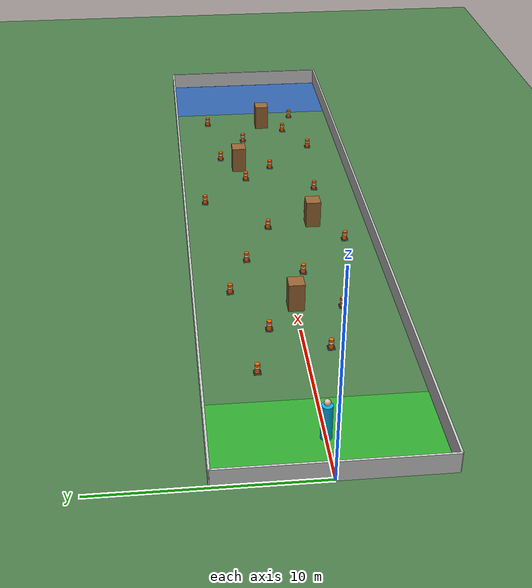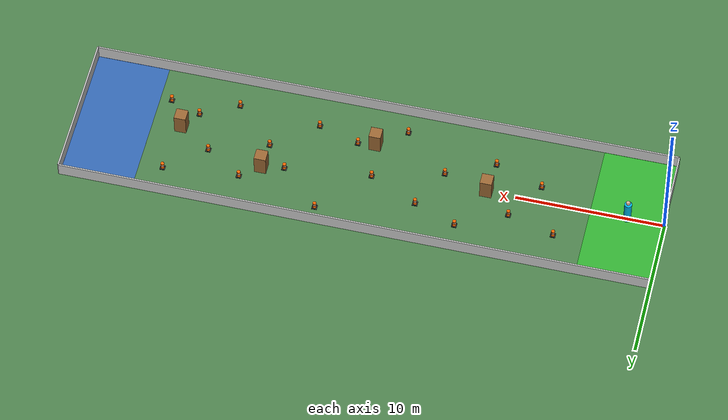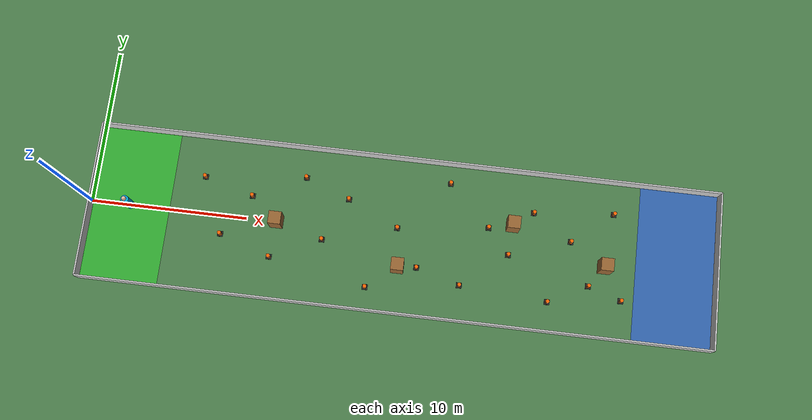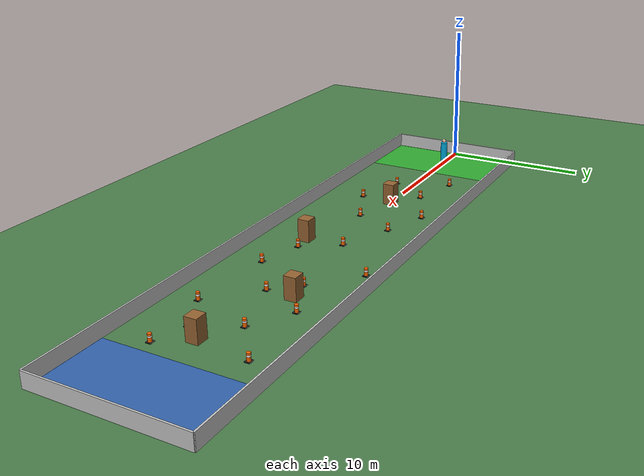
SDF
<?xml version="1.0" ?>
<sdf version="1.6">
  <world name="stage1_field">
    <!-- Physics engine -->
    <physics name="1ms" type="ignored">
      <max_step_size>0.001</max_step_size>
      <real_time_factor>1.0</real_time_factor>
      <real_time_update_rate>1000</real_time_update_rate>
    </physics>

    <!-- Plugins -->
    <plugin filename="gz-sim-physics-system" name="gz::sim::systems::Physics"/>
    <plugin filename="gz-sim-user-commands-system" name="gz::sim::systems::UserCommands"/>
    <plugin filename="gz-sim-scene-broadcaster-system" name="gz::sim::systems::SceneBroadcaster"/>
    <plugin filename="gz-sim-sensors-system" name="gz::sim::systems::Sensors">
      <render_engine>ogre2</render_engine>
    </plugin>

    <!-- Sun Light -->
    <light type="directional" name="sun">
      <cast_shadows>true</cast_shadows>
      <pose>0 0 10 0 0 0</pose>
      <diffuse>0.8 0.8 0.8 1</diffuse>
      <specular>0.2 0.2 0.2 1</specular>
      <direction>-0.5 0.1 -0.9</direction>
    </light>

    <!-- Ground Plane -->
    <model name="ground_plane">
      <static>true</static>
      <link name="link">
        <collision name="collision">
          <geometry>
            <plane>
              <normal>0 0 1</normal>
              <size>100 100</size>
            </plane>
          </geometry>
        </collision>
        <visual name="visual">
          <geometry>
            <plane>
              <normal>0 0 1</normal>
              <size>100 100</size>
            </plane>
          </geometry>
          <material>
            <ambient>0.3 0.4 0.3 1.0</ambient>
            <diffuse>0.3 0.5 0.3 1.0</diffuse>
          </material>
        </visual>
      </link>
    </model>

    <!-- Field Enclosure Walls (10m x 40m Field: X=[0,40], Y=[-5,5]) -->
    <model name="wall_north">
      <static>true</static>
      <pose>20.0 5.0 0.5 0 0 0</pose>
      <link name="link">
        <visual name="visual"><geometry><box><size>40.0 0.1 1.0</size></box></geometry><material><ambient>0.8 0.8 0.8 1.0</ambient></material></visual>
        <collision name="collision"><geometry><box><size>40.0 0.1 1.0</size></box></geometry></collision>
      </link>
    </model>

    <model name="wall_south">
      <static>true</static>
      <pose>20.0 -5.0 0.5 0 0 0</pose>
      <link name="link">
        <visual name="visual"><geometry><box><size>40.0 0.1 1.0</size></box></geometry><material><ambient>0.8 0.8 0.8 1.0</ambient></material></visual>
        <collision name="collision"><geometry><box><size>40.0 0.1 1.0</size></box></geometry></collision>
      </link>
    </model>

    <model name="wall_west">
      <static>true</static>
      <pose>0.0 0.0 0.5 0 0 0</pose>
      <link name="link">
        <visual name="visual"><geometry><box><size>0.1 10.0 1.0</size></box></geometry><material><ambient>0.8 0.8 0.8 1.0</ambient></material></visual>
        <collision name="collision"><geometry><box><size>0.1 10.0 1.0</size></box></geometry></collision>
      </link>
    </model>

    <model name="wall_east">
      <static>true</static>
      <pose>40.0 0.0 0.5 0 0 0</pose>
      <link name="link">
        <visual name="visual"><geometry><box><size>0.1 10.0 1.0</size></box></geometry><material><ambient>0.8 0.8 0.8 1.0</ambient></material></visual>
        <collision name="collision"><geometry><box><size>0.1 10.0 1.0</size></box></geometry></collision>
      </link>
    </model>

    <!-- Start Zone Mat (X=[0, 5], Y=[-5, 5]) -->
    <model name="start_zone_mat">
      <static>true</static>
      <pose>2.5 0.0 0.005 0 0 0</pose>
      <link name="link">
        <visual name="visual">
          <geometry><box><size>5.0 10.0 0.001</size></box></geometry>
          <material><ambient>0.1 0.6 0.1 0.7</ambient><diffuse>0.2 0.8 0.2 0.7</diffuse></material>
        </visual>
      </link>
    </model>

    <!-- Exit Zone Mat (X=[35, 40], Y=[-5, 5]) -->
    <model name="exit_zone_mat">
      <static>true</static>
      <pose>37.5 0.0 0.005 0 0 0</pose>
      <link name="link">
        <visual name="visual">
          <geometry><box><size>5.0 10.0 0.001</size></box></geometry>
          <material><ambient>0.1 0.3 0.8 0.7</ambient><diffuse>0.2 0.4 0.9 0.7</diffuse></material>
        </visual>
      </link>
    </model>

    <!-- Static Human Model -->
    <include>
      <uri>model://static_human</uri>
      <name>human_0</name>
      <pose>2.5 0.0 0.0 0 0 0.0</pose>
    </include>

    <!-- Static Obstacles -->
    <include><uri>model://static_obstacle</uri><name>obstacle_1</name><pose>12.0 0.0 0.0 0 0 0</pose></include>
    <include><uri>model://static_obstacle</uri><name>obstacle_2</name><pose>20.0 -2.0 0.0 0 0 0</pose></include>
    <include><uri>model://static_obstacle</uri><name>obstacle_3</name><pose>27.0 1.5 0.0 0 0 0</pose></include>
    <include><uri>model://static_obstacle</uri><name>obstacle_4</name><pose>33.0 -0.5 0.0 0 0 0</pose></include>

    <!-- Simulated Mines (Traffic Cones) -->
    <include><uri>model://traffic_cone</uri><name>mine_1</name><pose>10.2 1.5 0.0 0 0 0</pose></include>
    <include><uri>model://traffic_cone</uri><name>mine_2</name><pose>11.8 -2.3 0.0 0 0 0</pose></include>
    <include><uri>model://traffic_cone</uri><name>mine_3</name><pose>13.5 3.1 0.0 0 0 0</pose></include>
    <include><uri>model://traffic_cone</uri><name>mine_4</name><pose>15.0 -0.8 0.0 0 0 0</pose></include>
    <include><uri>model://traffic_cone</uri><name>mine_5</name><pose>16.4 2.0 0.0 0 0 0</pose></include>
    <include><uri>model://traffic_cone</uri><name>mine_6</name><pose>18.1 -3.5 0.0 0 0 0</pose></include>
    <include><uri>model://traffic_cone</uri><name>mine_7</name><pose>19.7 0.5 0.0 0 0 0</pose></include>
    <include><uri>model://traffic_cone</uri><name>mine_8</name><pose>21.2 -1.9 0.0 0 0 0</pose></include>
    <include><uri>model://traffic_cone</uri><name>mine_9</name><pose>22.8 3.8 0.0 0 0 0</pose></include>
    <include><uri>model://traffic_cone</uri><name>mine_10</name><pose>24.0 -2.7 0.0 0 0 0</pose></include>
    <include><uri>model://traffic_cone</uri><name>mine_11</name><pose>25.5 1.2 0.0 0 0 0</pose></include>
    <include><uri>model://traffic_cone</uri><name>mine_12</name><pose>26.9 -0.4 0.0 0 0 0</pose></include>
    <include><uri>model://traffic_cone</uri><name>mine_13</name><pose>28.3 2.5 0.0 0 0 0</pose></include>
    <include><uri>model://traffic_cone</uri><name>mine_14</name><pose>29.6 -3.1 0.0 0 0 0</pose></include>
    <include><uri>model://traffic_cone</uri><name>mine_15</name><pose>30.8 0.9 0.0 0 0 0</pose></include>
    <include><uri>model://traffic_cone</uri><name>mine_16</name><pose>32.1 -1.8 0.0 0 0 0</pose></include>
    <include><uri>model://traffic_cone</uri><name>mine_17</name><pose>33.4 3.0 0.0 0 0 0</pose></include>
    <include><uri>model://traffic_cone</uri><name>mine_18</name><pose>34.2 -2.5 0.0 0 0 0</pose></include>
    <include><uri>model://traffic_cone</uri><name>mine_19</name><pose>8.5 -1.2 0.0 0 0 0</pose></include>
    <include><uri>model://traffic_cone</uri><name>mine_20</name><pose>7.0 2.4 0.0 0 0 0</pose></include>
  </world>
</sdf>

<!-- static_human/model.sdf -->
<sdf version="1.6">
  <model name="static_human">
    <static>true</static>
    <link name="link">
      <!-- Torso / Body -->
      <collision name="body_collision">
        <pose>0 0 0.85 0 0 0</pose>
        <geometry>
          <cylinder>
            <radius>0.25</radius>
            <length>1.7</length>
          </cylinder>
        </geometry>
      </collision>
      <visual name="body_visual">
        <pose>0 0 0.85 0 0 0</pose>
        <geometry>
          <cylinder>
            <radius>0.25</radius>
            <length>1.7</length>
          </cylinder>
        </geometry>
        <material>
          <ambient>0.0 0.6 0.8 1.0</ambient>
          <diffuse>0.0 0.7 0.9 1.0</diffuse>
        </material>
      </visual>

      <!-- Head -->
      <visual name="head_visual">
        <pose>0 0 1.85 0 0 0</pose>
        <geometry>
          <sphere>
            <radius>0.15</radius>
          </sphere>
        </geometry>
        <material>
          <ambient>0.9 0.75 0.65 1.0</ambient>
          <diffuse>0.9 0.75 0.65 1.0</diffuse>
        </material>
      </visual>
    </link>
  </model>
</sdf>

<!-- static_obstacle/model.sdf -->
<sdf version="1.6">
  <model name="static_obstacle">
    <static>true</static>
    <link name="link">
      <collision name="collision">
        <pose>0 0 0.75 0 0 0</pose>
        <geometry>
          <box>
            <size>0.8 0.8 1.5</size>
          </box>
        </geometry>
      </collision>
      <visual name="visual">
        <pose>0 0 0.75 0 0 0</pose>
        <geometry>
          <box>
            <size>0.8 0.8 1.5</size>
          </box>
        </geometry>
        <material>
          <ambient>0.4 0.4 0.4 1.0</ambient>
          <diffuse>0.6 0.4 0.2 1.0</diffuse>
        </material>
      </visual>
    </link>
  </model>
</sdf>

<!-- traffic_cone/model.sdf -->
<sdf version="1.6">
  <model name="traffic_cone">
    <static>true</static>
    <link name="link">
      <!-- Base Plate -->
      <collision name="base_collision">
        <pose>0 0 0.02 0 0 0</pose>
        <geometry>
          <box>
            <size>0.35 0.35 0.04</size>
          </box>
        </geometry>
      </collision>
      <visual name="base_visual">
        <pose>0 0 0.02 0 0 0</pose>
        <geometry>
          <box>
            <size>0.35 0.35 0.04</size>
          </box>
        </geometry>
        <material>
          <ambient>0.1 0.1 0.1 1.0</ambient>
          <diffuse>0.15 0.15 0.15 1.0</diffuse>
        </material>
      </visual>

      <!-- Cone Body -->
      <collision name="cone_collision">
        <pose>0 0 0.27 0 0 0</pose>
        <geometry>
          <cylinder>
            <radius>0.12</radius>
            <length>0.50</length>
          </cylinder>
        </geometry>
      </collision>
      <visual name="cone_visual">
        <pose>0 0 0.27 0 0 0</pose>
        <geometry>
          <cylinder>
            <radius>0.12</radius>
            <length>0.50</length>
          </cylinder>
        </geometry>
        <material>
          <ambient>1.0 0.35 0.0 1.0</ambient>
          <diffuse>1.0 0.40 0.0 1.0</diffuse>
          <specular>0.5 0.5 0.5 1.0</specular>
        </material>
      </visual>

      <!-- Reflective Stripe -->
      <visual name="stripe_visual">
        <pose>0 0 0.35 0 0 0</pose>
        <geometry>
          <cylinder>
            <radius>0.125</radius>
            <length>0.10</length>
          </cylinder>
        </geometry>
        <material>
          <ambient>0.9 0.9 0.9 1.0</ambient>
          <diffuse>1.0 1.0 1.0 1.0</diffuse>
        </material>
      </visual>
    </link>
  </model>
</sdf>
